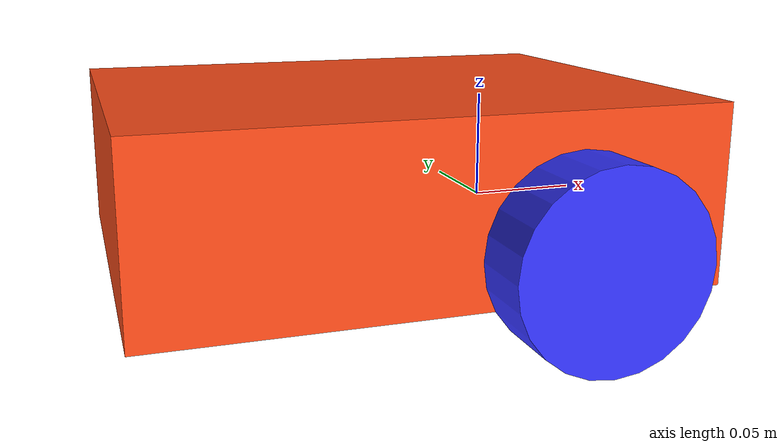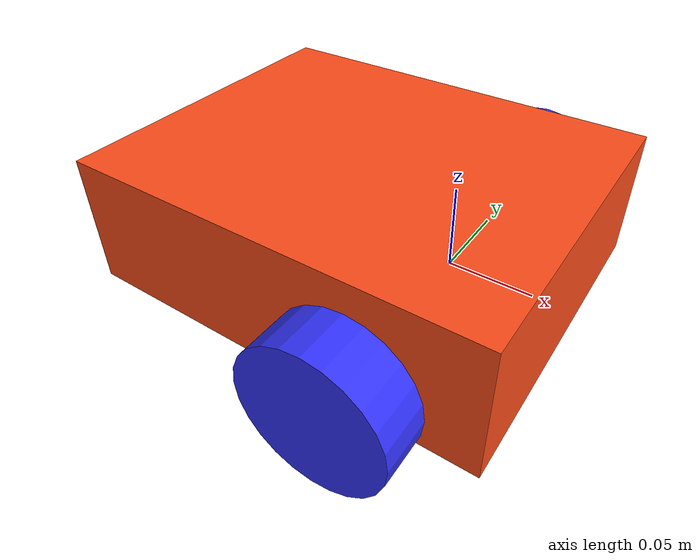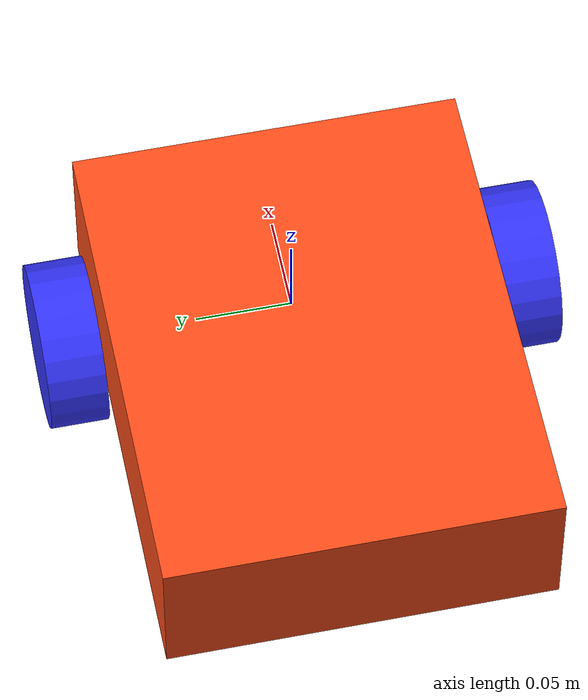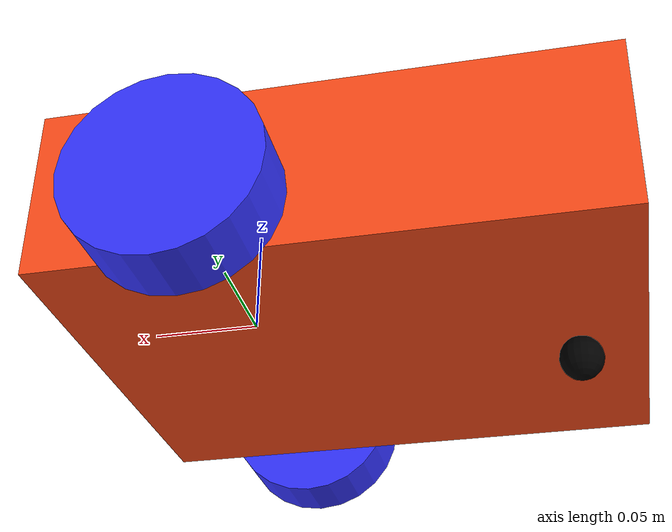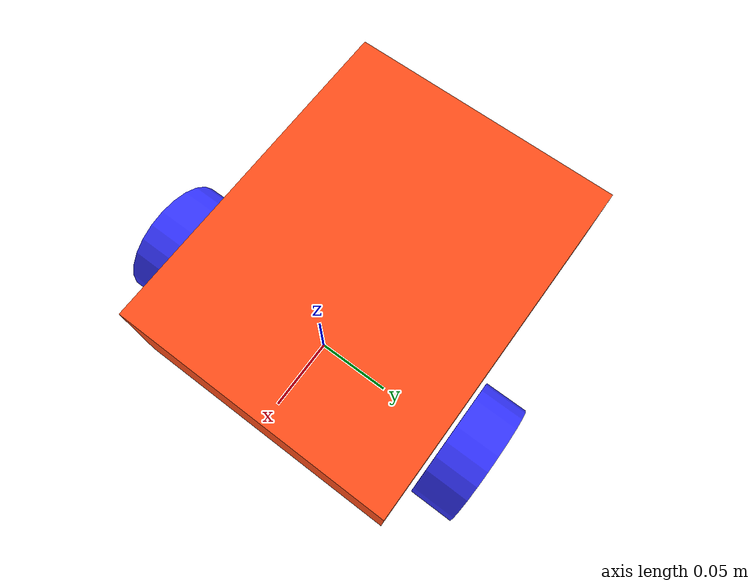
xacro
<?xml version="1.0"?>
<robot xmlns:xacro="http://www.ros.org/wiki/xacro">

    <xacro:include filename="inertial_macros.xacro"/>

    <!-- Rover dimensions [OURS], 30 Sep 2026. Metres and kilograms. -->
    <xacro:property name="chassis_length" value="0.25"/>
    <xacro:property name="chassis_width" value="0.20"/>
    <xacro:property name="chassis_height" value="0.08"/>
    <xacro:property name="chassis_mass" value="1.3"/>
    <xacro:property name="ground_clearance" value="0.02"/>
    <xacro:property name="axle_from_rear" value="0.18"/>
    <xacro:property name="wheel_radius" value="0.0425"/>
    <xacro:property name="wheel_thickness" value="0.03"/>
    <xacro:property name="wheel_gap" value="0.003"/>
    <xacro:property name="wheel_mass" value="0.08"/>
    <xacro:property name="caster_radius" value="0.01"/>
    <xacro:property name="caster_from_rear" value="0.03"/>
    <xacro:property name="caster_mass" value="0.02"/>

    <!-- Colours for RViz -->
    <material name="orange">
        <color rgba="1 0.3 0.1 1"/>
    </material>
    <material name="blue">
        <color rgba="0.2 0.2 1 1"/>
    </material>
    <material name="black">
        <color rgba="0 0 0 1"/>
    </material>

    <!-- BASE LINK: centre of the drive axle, the point the robot turns about.
         Deliberately empty: no visual, collision or inertial. -->
    <link name="base_link">
    </link>

    <!-- CHASSIS: origin at the rear-bottom-centre of the box -->
    <joint name="chassis_joint" type="fixed">
        <parent link="base_link"/>
        <child link="chassis"/>
        <origin xyz="${-axle_from_rear} 0 ${ground_clearance - wheel_radius}"/>
    </joint>

    <link name="chassis">
        <visual>
            <origin xyz="${chassis_length/2} 0 ${chassis_height/2}"/>
            <geometry>
                <box size="${chassis_length} ${chassis_width} ${chassis_height}"/>
            </geometry>
            <material name="orange"/>
        </visual>
        <collision>
            <origin xyz="${chassis_length/2} 0 ${chassis_height/2}"/>
            <geometry>
                <box size="${chassis_length} ${chassis_width} ${chassis_height}"/>
            </geometry>
        </collision>
        <xacro:inertial_box mass="${chassis_mass}" x="${chassis_length}" y="${chassis_width}" z="${chassis_height}">
            <origin xyz="${chassis_length/2} 0 ${chassis_height/2}" rpy="0 0 0"/>
        </xacro:inertial_box>
    </link>

    <!-- LEFT WHEEL: continuous joint on the axle, 118 mm to the left of base_link -->
    <joint name="left_wheel_joint" type="continuous">
        <parent link="base_link"/>
        <child link="left_wheel"/>
        <origin xyz="0 ${chassis_width/2 + wheel_gap + wheel_thickness/2} 0" rpy="${-pi/2} 0 0"/>
        <axis xyz="0 0 1"/>
    </joint>

    <link name="left_wheel">
        <visual>
            <geometry>
                <cylinder radius="${wheel_radius}" length="${wheel_thickness}"/>
            </geometry>
            <material name="blue"/>
        </visual>
        <collision>
            <geometry>
                <cylinder radius="${wheel_radius}" length="${wheel_thickness}"/>
            </geometry>
        </collision>
        <xacro:inertial_cylinder mass="${wheel_mass}" length="${wheel_thickness}" radius="${wheel_radius}">
            <origin xyz="0 0 0" rpy="0 0 0"/>
        </xacro:inertial_cylinder>
    </link>

    <!-- RIGHT WHEEL: mirror image; axis flipped so positive rotation also drives forward -->
    <joint name="right_wheel_joint" type="continuous">
        <parent link="base_link"/>
        <child link="right_wheel"/>
        <origin xyz="0 ${-(chassis_width/2 + wheel_gap + wheel_thickness/2)} 0" rpy="${pi/2} 0 0"/>
        <axis xyz="0 0 -1"/>
    </joint>

    <link name="right_wheel">
        <visual>
            <geometry>
                <cylinder radius="${wheel_radius}" length="${wheel_thickness}"/>
            </geometry>
            <material name="blue"/>
        </visual>
        <collision>
            <geometry>
                <cylinder radius="${wheel_radius}" length="${wheel_thickness}"/>
            </geometry>
        </collision>
        <xacro:inertial_cylinder mass="${wheel_mass}" length="${wheel_thickness}" radius="${wheel_radius}">
            <origin xyz="0 0 0" rpy="0 0 0"/>
        </xacro:inertial_cylinder>
    </link>

    <!-- CASTER: ball caster under the chassis rear; its lowest point sits on the floor -->
    <joint name="caster_wheel_joint" type="fixed">
        <parent link="chassis"/>
        <child link="caster_wheel"/>
        <origin xyz="${caster_from_rear} 0 ${caster_radius - ground_clearance}"/>
    </joint>

    <link name="caster_wheel">
        <visual>
            <geometry>
                <sphere radius="${caster_radius}"/>
            </geometry>
            <material name="black"/>
        </visual>
        <collision>
            <geometry>
                <sphere radius="${caster_radius}"/>
            </geometry>
        </collision>
        <xacro:inertial_sphere mass="${caster_mass}" radius="${caster_radius}">
            <origin xyz="0 0 0" rpy="0 0 0"/>
        </xacro:inertial_sphere>
    </link>
</robot>
